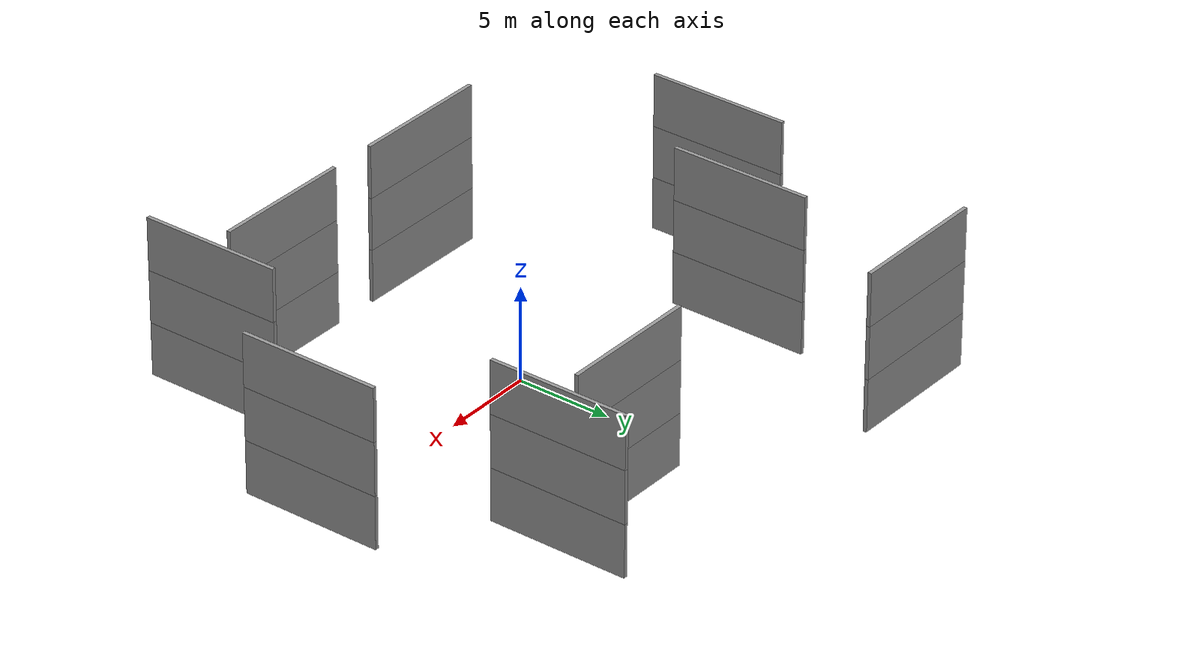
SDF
<sdf version="1.5">
 <world name="default">
  <plugin name="mrs_gazebo_static_transform_republisher_plugin" filename="libMRSGazeboStaticTransformRepublisher.so"/>
  <spherical_coordinates>
   <surface_model>EARTH_WGS84</surface_model>
   <latitude_deg>37.411802</latitude_deg>
   <longitude_deg>-121.995739</longitude_deg>
   <elevation>0.0</elevation>
   <heading_deg>0</heading_deg>
  </spherical_coordinates>
  <physics name="default_physics" default="0" type="ode">
   <gravity>0 0 -9.8066</gravity>
   <ode>
    <solver>
     <type>quick</type>
     <iters>10</iters>
     <sor>1.3</sor>
     <use_dynamic_moi_rescaling>0</use_dynamic_moi_rescaling>
    </solver>
    <constraints>
     <cfm>0</cfm>
     <erp>0.2</erp>
     <contact_max_correcting_vel>1000</contact_max_correcting_vel>
     <contact_surface_layer>0.001</contact_surface_layer>
    </constraints>
   </ode>
   <max_step_size>0.004</max_step_size>
   <real_time_factor>1</real_time_factor>
   <real_time_update_rate>250</real_time_update_rate>
   <magnetic_field>6.0e-06 2.3e-05 -4.2e-05</magnetic_field>
  </physics>
  <scene><shadows>false</shadows></scene>
  <light type="directional" name="sun">
   <pose>250 250 600 0 0 0</pose>
   <diffuse>0.8 0.8 0.8 1</diffuse>
   <specular>0.2 0.2 0.2 1</specular>
   <attenuation>
    <range>1000</range>
    <constant>0.9</constant>
    <linear>0.01</linear>
    <quadratic>0.001</quadratic>
   </attenuation>
   <direction>0 0 -1</direction>
  </light>
  <model name="grey_wall_11">
   <static>1</static>
   <link name="link">
    <pose>0 0 1.4 0 -0 0</pose>
    <collision name="collision"><geometry><box><size>7.5 0.2 2.8</size></box></geometry></collision>
    <visual name="visual">
     <cast_shadows>0</cast_shadows>
     <geometry><box><size>7.5 0.2 2.8</size></box></geometry>
     <material>
      <script>
       <uri>model://grey_wall/materials/scripts</uri>
       <uri>model://grey_wall/materials/textures</uri>
       <name>vrc/grey_wall</name>
      </script>
     </material>
    </visual>
   </link>
   <pose>5.0 -10.0 0 0 -0 0</pose>
  </model>
  <model name="grey_wall_12">
   <static>1</static>
   <link name="link">
    <pose>0 0 1.4 0 -0 0</pose>
    <collision name="collision"><geometry><box><size>7.5 0.2 2.8</size></box></geometry></collision>
    <visual name="visual">
     <cast_shadows>0</cast_shadows>
     <geometry><box><size>7.5 0.2 2.8</size></box></geometry>
     <material>
      <script>
       <uri>model://grey_wall/materials/scripts</uri>
       <uri>model://grey_wall/materials/textures</uri>
       <name>vrc/grey_wall</name>
      </script>
     </material>
    </visual>
   </link>
   <pose>5.0 -10.0 2.8 0 -0 0</pose>
  </model>
  <model name="grey_wall_13">
   <static>1</static>
   <link name="link">
    <pose>0 0 1.4 0 -0 0</pose>
    <collision name="collision"><geometry><box><size>7.5 0.2 2.8</size></box></geometry></collision>
    <visual name="visual">
     <cast_shadows>0</cast_shadows>
     <geometry><box><size>7.5 0.2 2.8</size></box></geometry>
     <material>
      <script>
       <uri>model://grey_wall/materials/scripts</uri>
       <uri>model://grey_wall/materials/textures</uri>
       <name>vrc/grey_wall</name>
      </script>
     </material>
    </visual>
   </link>
   <pose>5.0 -10.0 5.6 0 -0 0</pose>
  </model>
  <model name="grey_wall_21">
   <static>1</static>
   <link name="link">
    <pose>0 0 1.4 0 -0 0</pose>
    <collision name="collision"><geometry><box><size>7.5 0.2 2.8</size></box></geometry></collision>
    <visual name="visual">
     <cast_shadows>0</cast_shadows>
     <geometry><box><size>7.5 0.2 2.8</size></box></geometry>
     <material>
      <script>
       <uri>model://grey_wall/materials/scripts</uri>
       <uri>model://grey_wall/materials/textures</uri>
       <name>vrc/grey_wall</name>
      </script>
     </material>
    </visual>
   </link>
   <pose>5.0 10.0 0 0 -0 0</pose>
  </model>
  <model name="grey_wall_22">
   <static>1</static>
   <link name="link">
    <pose>0 0 1.4 0 -0 0</pose>
    <collision name="collision"><geometry><box><size>7.5 0.2 2.8</size></box></geometry></collision>
    <visual name="visual">
     <cast_shadows>0</cast_shadows>
     <geometry><box><size>7.5 0.2 2.8</size></box></geometry>
     <material>
      <script>
       <uri>model://grey_wall/materials/scripts</uri>
       <uri>model://grey_wall/materials/textures</uri>
       <name>vrc/grey_wall</name>
      </script>
     </material>
    </visual>
   </link>
   <pose>5.0 10.0 2.8 0 -0 0</pose>
  </model>
  <model name="grey_wall_23">
   <static>1</static>
   <link name="link">
    <pose>0 0 1.4 0 -0 0</pose>
    <collision name="collision"><geometry><box><size>7.5 0.2 2.8</size></box></geometry></collision>
    <visual name="visual">
     <cast_shadows>0</cast_shadows>
     <geometry><box><size>7.5 0.2 2.8</size></box></geometry>
     <material>
      <script>
       <uri>model://grey_wall/materials/scripts</uri>
       <uri>model://grey_wall/materials/textures</uri>
       <name>vrc/grey_wall</name>
      </script>
     </material>
    </visual>
   </link>
   <pose>5.0 10.0 5.6 0 -0 0</pose>
  </model>
  <model name="grey_wall_31">
   <static>1</static>
   <link name="link">
    <pose>0 0 1.4 0 -0 0</pose>
    <collision name="collision"><geometry><box><size>7.5 0.2 2.8</size></box></geometry></collision>
    <visual name="visual">
     <cast_shadows>0</cast_shadows>
     <geometry><box><size>7.5 0.2 2.8</size></box></geometry>
     <material>
      <script>
       <uri>model://grey_wall/materials/scripts</uri>
       <uri>model://grey_wall/materials/textures</uri>
       <name>vrc/grey_wall</name>
      </script>
     </material>
    </visual>
   </link>
   <pose>-5.0 -10.0 0 0 -0 0</pose>
  </model>
  <model name="grey_wall_32">
   <static>1</static>
   <link name="link">
    <pose>0 0 1.4 0 -0 0</pose>
    <collision name="collision"><geometry><box><size>7.5 0.2 2.8</size></box></geometry></collision>
    <visual name="visual">
     <cast_shadows>0</cast_shadows>
     <geometry><box><size>7.5 0.2 2.8</size></box></geometry>
     <material>
      <script>
       <uri>model://grey_wall/materials/scripts</uri>
       <uri>model://grey_wall/materials/textures</uri>
       <name>vrc/grey_wall</name>
      </script>
     </material>
    </visual>
   </link>
   <pose>-5.0 -10.0 2.8 0 -0 0</pose>
  </model>
  <model name="grey_wall_33">
   <static>1</static>
   <link name="link">
    <pose>0 0 1.4 0 -0 0</pose>
    <collision name="collision"><geometry><box><size>7.5 0.2 2.8</size></box></geometry></collision>
    <visual name="visual">
     <cast_shadows>0</cast_shadows>
     <geometry><box><size>7.5 0.2 2.8</size></box></geometry>
     <material>
      <script>
       <uri>model://grey_wall/materials/scripts</uri>
       <uri>model://grey_wall/materials/textures</uri>
       <name>vrc/grey_wall</name>
      </script>
     </material>
    </visual>
   </link>
   <pose>-5.0 -10.0 5.6 0 -0 0</pose>
  </model>
  <model name="grey_wall_41">
   <static>1</static>
   <link name="link">
    <pose>0 0 1.4 0 -0 0</pose>
    <collision name="collision"><geometry><box><size>7.5 0.2 2.8</size></box></geometry></collision>
    <visual name="visual">
     <cast_shadows>0</cast_shadows>
     <geometry><box><size>7.5 0.2 2.8</size></box></geometry>
     <material>
      <script>
       <uri>model://grey_wall/materials/scripts</uri>
       <uri>model://grey_wall/materials/textures</uri>
       <name>vrc/grey_wall</name>
      </script>
     </material>
    </visual>
   </link>
   <pose>10.0 -10.0 0 0 -0 1.57</pose>
  </model>
  <model name="grey_wall_42">
   <static>1</static>
   <link name="link">
    <pose>0 0 1.4 0 -0 0</pose>
    <collision name="collision"><geometry><box><size>7.5 0.2 2.8</size></box></geometry></collision>
    <visual name="visual">
     <cast_shadows>0</cast_shadows>
     <geometry><box><size>7.5 0.2 2.8</size></box></geometry>
     <material>
      <script>
       <uri>model://grey_wall/materials/scripts</uri>
       <uri>model://grey_wall/materials/textures</uri>
       <name>vrc/grey_wall</name>
      </script>
     </material>
    </visual>
   </link>
   <pose>10.0 -10.0 2.8 0 -0 1.57</pose>
  </model>
  <model name="grey_wall_43">
   <static>1</static>
   <link name="link">
    <pose>0 0 1.4 0 -0 0</pose>
    <collision name="collision"><geometry><box><size>7.5 0.2 2.8</size></box></geometry></collision>
    <visual name="visual">
     <cast_shadows>0</cast_shadows>
     <geometry><box><size>7.5 0.2 2.8</size></box></geometry>
     <material>
      <script>
       <uri>model://grey_wall/materials/scripts</uri>
       <uri>model://grey_wall/materials/textures</uri>
       <name>vrc/grey_wall</name>
      </script>
     </material>
    </visual>
   </link>
   <pose>10.0 -10.0 5.6 0 -0 1.57</pose>
  </model>
  <model name="grey_wall_51">
   <static>1</static>
   <link name="link">
    <pose>0 0 1.4 0 -0 0</pose>
    <collision name="collision"><geometry><box><size>7.5 0.2 2.8</size></box></geometry></collision>
    <visual name="visual">
     <cast_shadows>0</cast_shadows>
     <geometry><box><size>7.5 0.2 2.8</size></box></geometry>
     <material>
      <script>
       <uri>model://grey_wall/materials/scripts</uri>
       <uri>model://grey_wall/materials/textures</uri>
       <name>vrc/grey_wall</name>
      </script>
     </material>
    </visual>
   </link>
   <pose>-10.0 5.0 0 0 -0 1.57</pose>
  </model>
  <model name="grey_wall_52">
   <static>1</static>
   <link name="link">
    <pose>0 0 1.4 0 -0 0</pose>
    <collision name="collision"><geometry><box><size>7.5 0.2 2.8</size></box></geometry></collision>
    <visual name="visual">
     <cast_shadows>0</cast_shadows>
     <geometry><box><size>7.5 0.2 2.8</size></box></geometry>
     <material>
      <script>
       <uri>model://grey_wall/materials/scripts</uri>
       <uri>model://grey_wall/materials/textures</uri>
       <name>vrc/grey_wall</name>
      </script>
     </material>
    </visual>
   </link>
   <pose>-10.0 5.0 2.8 0 -0 1.57</pose>
  </model>
  <model name="grey_wall_53">
   <static>1</static>
   <link name="link">
    <pose>0 0 1.4 0 -0 0</pose>
    <collision name="collision"><geometry><box><size>7.5 0.2 2.8</size></box></geometry></collision>
    <visual name="visual">
     <cast_shadows>0</cast_shadows>
     <geometry><box><size>7.5 0.2 2.8</size></box></geometry>
     <material>
      <script>
       <uri>model://grey_wall/materials/scripts</uri>
       <uri>model://grey_wall/materials/textures</uri>
       <name>vrc/grey_wall</name>
      </script>
     </material>
    </visual>
   </link>
   <pose>-10.0 5.0 5.6 0 -0 1.57</pose>
  </model>
  <model name="grey_wall_61">
   <static>1</static>
   <link name="link">
    <pose>0 0 1.4 0 -0 0</pose>
    <collision name="collision"><geometry><box><size>7.5 0.2 2.8</size></box></geometry></collision>
    <visual name="visual">
     <cast_shadows>0</cast_shadows>
     <geometry><box><size>7.5 0.2 2.8</size></box></geometry>
     <material>
      <script>
       <uri>model://grey_wall/materials/scripts</uri>
       <uri>model://grey_wall/materials/textures</uri>
       <name>vrc/grey_wall</name>
      </script>
     </material>
    </visual>
   </link>
   <pose>10.0 10.0 0 0 -0 1.57</pose>
  </model>
  <model name="grey_wall_62">
   <static>1</static>
   <link name="link">
    <pose>0 0 1.4 0 -0 0</pose>
    <collision name="collision"><geometry><box><size>7.5 0.2 2.8</size></box></geometry></collision>
    <visual name="visual">
     <cast_shadows>0</cast_shadows>
     <geometry><box><size>7.5 0.2 2.8</size></box></geometry>
     <material>
      <script>
       <uri>model://grey_wall/materials/scripts</uri>
       <uri>model://grey_wall/materials/textures</uri>
       <name>vrc/grey_wall</name>
      </script>
     </material>
    </visual>
   </link>
   <pose>10.0 10.0 2.8 0 -0 1.57</pose>
  </model>
  <model name="grey_wall_63">
   <static>1</static>
   <link name="link">
    <pose>0 0 1.4 0 -0 0</pose>
    <collision name="collision"><geometry><box><size>7.5 0.2 2.8</size></box></geometry></collision>
    <visual name="visual">
     <cast_shadows>0</cast_shadows>
     <geometry><box><size>7.5 0.2 2.8</size></box></geometry>
     <material>
      <script>
       <uri>model://grey_wall/materials/scripts</uri>
       <uri>model://grey_wall/materials/textures</uri>
       <name>vrc/grey_wall</name>
      </script>
     </material>
    </visual>
   </link>
   <pose>10.0 10.0 5.6 0 -0 1.57</pose>
  </model>
  <model name="grey_wall_71">
   <static>1</static>
   <link name="link">
    <pose>0 0 1.4 0 -0 0</pose>
    <collision name="collision"><geometry><box><size>7.5 0.2 2.8</size></box></geometry></collision>
    <visual name="visual">
     <cast_shadows>0</cast_shadows>
     <geometry><box><size>7.5 0.2 2.8</size></box></geometry>
     <material>
      <script>
       <uri>model://grey_wall/materials/scripts</uri>
       <uri>model://grey_wall/materials/textures</uri>
       <name>vrc/grey_wall</name>
      </script>
     </material>
    </visual>
   </link>
   <pose>-15.0 0.0 0 0 -0 1.57</pose>
  </model>
  <model name="grey_wall_72">
   <static>1</static>
   <link name="link">
    <pose>0 0 1.4 0 -0 0</pose>
    <collision name="collision"><geometry><box><size>7.5 0.2 2.8</size></box></geometry></collision>
    <visual name="visual">
     <cast_shadows>0</cast_shadows>
     <geometry><box><size>7.5 0.2 2.8</size></box></geometry>
     <material>
      <script>
       <uri>model://grey_wall/materials/scripts</uri>
       <uri>model://grey_wall/materials/textures</uri>
       <name>vrc/grey_wall</name>
      </script>
     </material>
    </visual>
   </link>
   <pose>-15.0 0.0 2.8 0 -0 1.57</pose>
  </model>
  <model name="grey_wall_73">
   <static>1</static>
   <link name="link">
    <pose>0 0 1.4 0 -0 0</pose>
    <collision name="collision"><geometry><box><size>7.5 0.2 2.8</size></box></geometry></collision>
    <visual name="visual">
     <cast_shadows>0</cast_shadows>
     <geometry><box><size>7.5 0.2 2.8</size></box></geometry>
     <material>
      <script>
       <uri>model://grey_wall/materials/scripts</uri>
       <uri>model://grey_wall/materials/textures</uri>
       <name>vrc/grey_wall</name>
      </script>
     </material>
    </visual>
   </link>
   <pose>-15.0 0.0 5.6 0 -0 1.57</pose>
  </model>
  <model name="grey_wall_81">
   <static>1</static>
   <link name="link">
    <pose>0 0 1.4 0 -0 0</pose>
    <collision name="collision"><geometry><box><size>7.5 0.2 2.8</size></box></geometry></collision>
    <visual name="visual">
     <cast_shadows>0</cast_shadows>
     <geometry><box><size>7.5 0.2 2.8</size></box></geometry>
     <material>
      <script>
       <uri>model://grey_wall/materials/scripts</uri>
       <uri>model://grey_wall/materials/textures</uri>
       <name>vrc/grey_wall</name>
      </script>
     </material>
    </visual>
   </link>
   <pose>-10.0 15.0 0 0 -0 0.0</pose>
  </model>
  <model name="grey_wall_82">
   <static>1</static>
   <link name="link">
    <pose>0 0 1.4 0 -0 0</pose>
    <collision name="collision"><geometry><box><size>7.5 0.2 2.8</size></box></geometry></collision>
    <visual name="visual">
     <cast_shadows>0</cast_shadows>
     <geometry><box><size>7.5 0.2 2.8</size></box></geometry>
     <material>
      <script>
       <uri>model://grey_wall/materials/scripts</uri>
       <uri>model://grey_wall/materials/textures</uri>
       <name>vrc/grey_wall</name>
      </script>
     </material>
    </visual>
   </link>
   <pose>-10.0 15.0 2.8 0 -0 0.0</pose>
  </model>
  <model name="grey_wall_83">
   <static>1</static>
   <link name="link">
    <pose>0 0 1.4 0 -0 0</pose>
    <collision name="collision"><geometry><box><size>7.5 0.2 2.8</size></box></geometry></collision>
    <visual name="visual">
     <cast_shadows>0</cast_shadows>
     <geometry><box><size>7.5 0.2 2.8</size></box></geometry>
     <material>
      <script>
       <uri>model://grey_wall/materials/scripts</uri>
       <uri>model://grey_wall/materials/textures</uri>
       <name>vrc/grey_wall</name>
      </script>
     </material>
    </visual>
   </link>
   <pose>-10.0 15.0 5.6 0 -0 0.0</pose>
  </model>
  <model name="grey_wall_91">
   <static>1</static>
   <link name="link">
    <pose>0 0 1.4 0 -0 0</pose>
    <collision name="collision"><geometry><box><size>7.5 0.2 2.8</size></box></geometry></collision>
    <visual name="visual">
     <cast_shadows>0</cast_shadows>
     <geometry><box><size>7.5 0.2 2.8</size></box></geometry>
     <material>
      <script>
       <uri>model://grey_wall/materials/scripts</uri>
       <uri>model://grey_wall/materials/textures</uri>
       <name>vrc/grey_wall</name>
      </script>
     </material>
    </visual>
   </link>
   <pose>15.0 0.0 0 0 -0 1.57</pose>
  </model>
  <model name="grey_wall_92">
   <static>1</static>
   <link name="link">
    <pose>0 0 1.4 0 -0 0</pose>
    <collision name="collision"><geometry><box><size>7.5 0.2 2.8</size></box></geometry></collision>
    <visual name="visual">
     <cast_shadows>0</cast_shadows>
     <geometry><box><size>7.5 0.2 2.8</size></box></geometry>
     <material>
      <script>
       <uri>model://grey_wall/materials/scripts</uri>
       <uri>model://grey_wall/materials/textures</uri>
       <name>vrc/grey_wall</name>
      </script>
     </material>
    </visual>
   </link>
   <pose>15.0 0.0 2.8 0 -0 1.57</pose>
  </model>
  <model name="grey_wall_93">
   <static>1</static>
   <link name="link">
    <pose>0 0 1.4 0 -0 0</pose>
    <collision name="collision"><geometry><box><size>7.5 0.2 2.8</size></box></geometry></collision>
    <visual name="visual">
     <cast_shadows>0</cast_shadows>
     <geometry><box><size>7.5 0.2 2.8</size></box></geometry>
     <material>
      <script>
       <uri>model://grey_wall/materials/scripts</uri>
       <uri>model://grey_wall/materials/textures</uri>
       <name>vrc/grey_wall</name>
      </script>
     </material>
    </visual>
   </link>
   <pose>15.0 0.0 5.6 0 -0 1.57</pose>
  </model>
  <model name="the_void">
   <static>1</static>
   <link name="link">
    <pose>0 0 0.1 0 -0 0</pose>
    <visual name="the_void">
     <pose>0 0 2 0 -0 0</pose>
     <geometry><sphere><radius>0.25</radius></sphere></geometry>
     <material>
      <script><uri>file://media/materials/scripts/Gazebo.material</uri><name>Gazebo/Black</name></script>
     </material>
    </visual>
   </link>
   <pose>-1000 -1000 0 0 0 0</pose>
  </model>
  <plugin name="mrs_gazebo_rviz_cam_synchronizer" filename="libMRSGazeboRvizCameraSynchronizer.so">
   <target_frame_id>gazebo_user_camera</target_frame_id>
   <world_origin_frame_id>uav1/gps_origin</world_origin_frame_id>
   <frame_to_follow>uav1::base_link</frame_to_follow>
  </plugin>
 </world>
</sdf>
